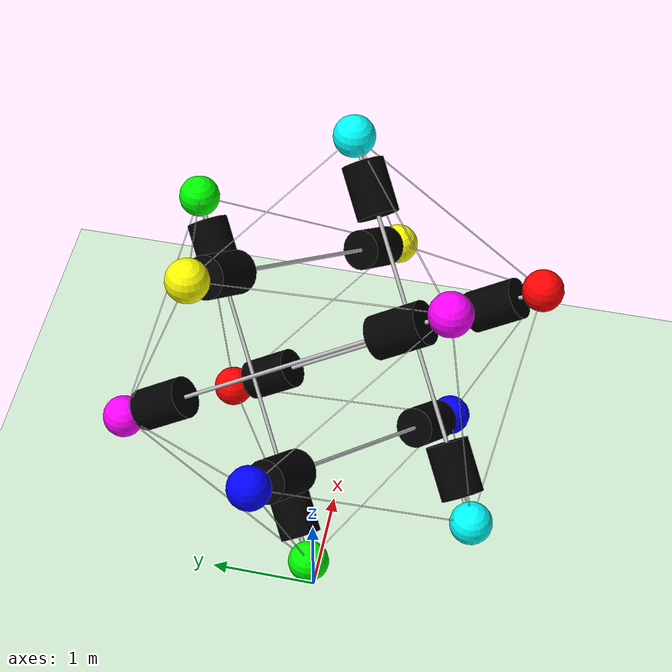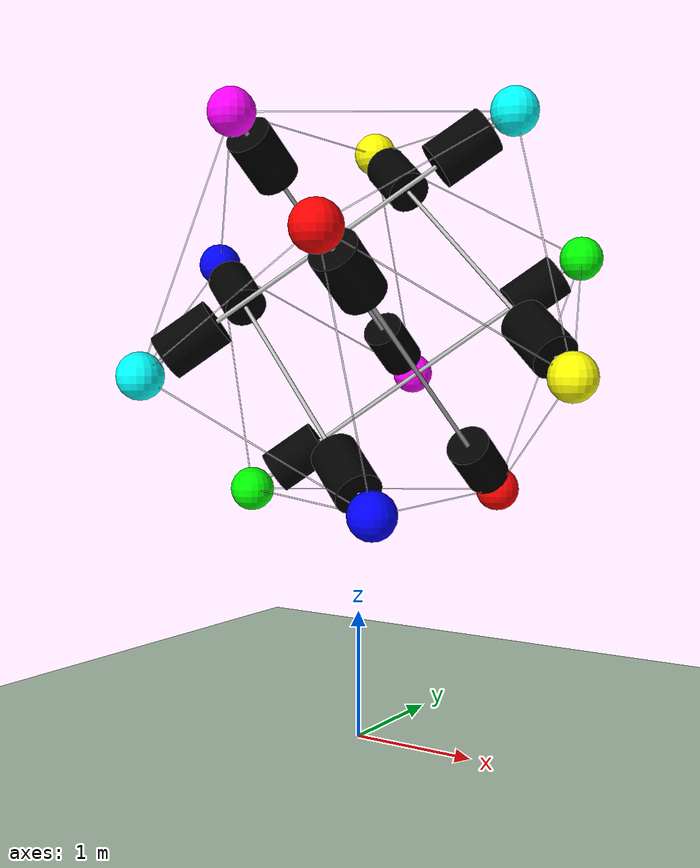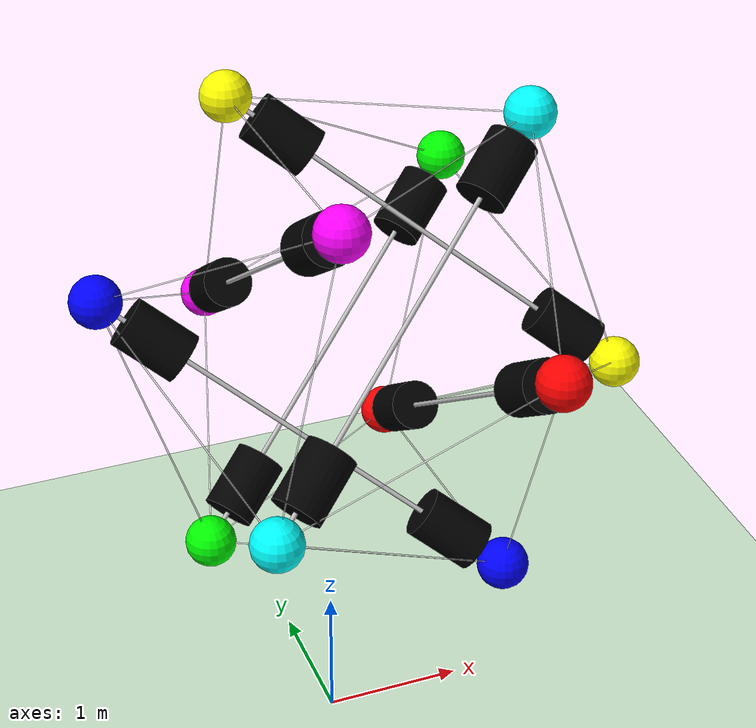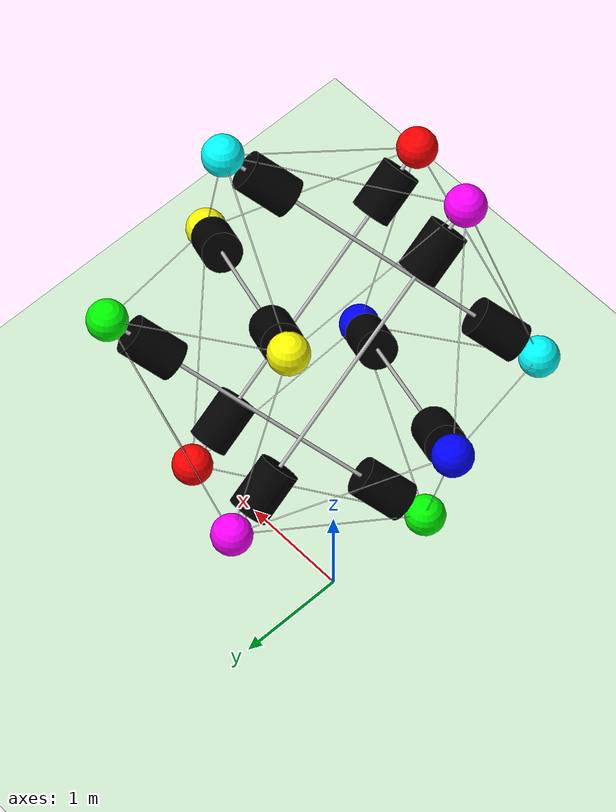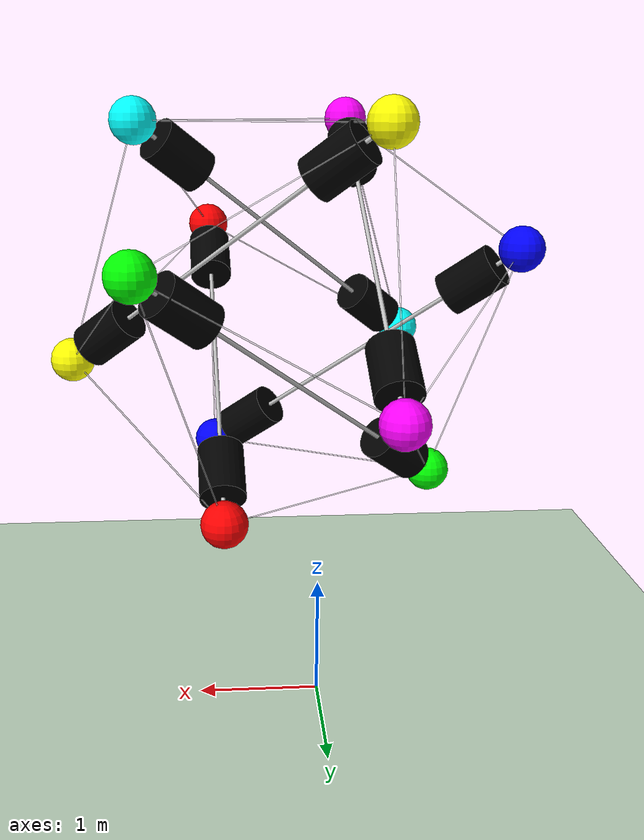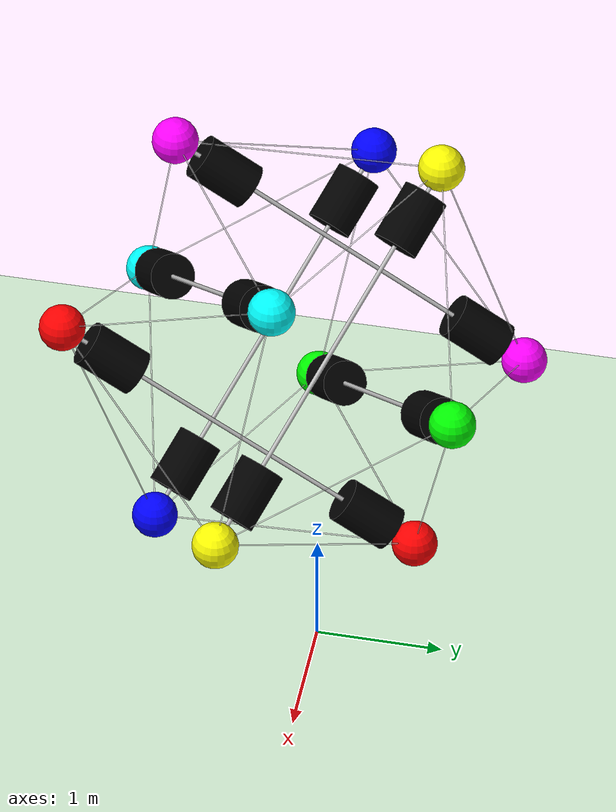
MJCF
<!--
  ~ Copyright (c) 2020.  -  present.  Kun Wang. All Rights Reserved.
  -->

<mujoco model="TT (v1.31)">
    <compiler angle="degree"  inertiafromgeom="true" autolimits="true">
        <lengthrange timestep="0.01"/>
    </compiler>

    <option timestep="0.01"
            gravity="-5 0 -9.81"
            cone="elliptic"
            solver="Newton"
            integrator="Euler">
    </option>

    <visual>
        <global offwidth="1024" offheight="768"/>
    </visual>

    <default>
        <geom conaffinity="1" condim="6" contype="1" rgba="0.75 0.75 0.75 1" size="0.014" solref="-5000 -50"
              density="1000" friction="0.5 0.005 0.9"/>
        <site type="sphere" size="0.02"/>
        <tendon width="0.005" rgba="1 1 1 0.5" damping="1000" stiffness="10000" springlength="1.5"/>
        <general ctrlrange="-100 0" dyntype="filter" gainprm="15000 0 0" biastype="none" dynprm="1 0 0" biasprm="0 0 0"/>
    </default>

    <asset>
        <texture builtin="gradient" height="100" rgb1="1 1 1" rgb2="0 0 0" type="skybox"
                 width="100"/>
        <texture builtin="flat" height="1278" mark="cross" markrgb="1 1 1" name="texgeom"
                 random="0.01" rgb1="0.8 0.6 0.4" rgb2="0.8 0.6 0.4" type="cube" width="127"/>
        <texture builtin="checker" height="100" name="texplane" rgb1="0 0 0" rgb2="0.8 0.8 0.8"
                 type="2d" width="100"/>
        <material name="MatPlane" reflectance="0." shininess="0.5" specular="0.5" texrepeat="30 30"
                  texture="texplane"/>
        <material name="geom" texture="texgeom" texuniform="true"/>
    </asset>

    <worldbody>

        <light name='mylight' pos="0 0 6"/>
        <geom conaffinity="1"  name="floor" pos="0 0 0"
              rgba="0.8 0.9 0.8 1" size="40 40 1" type="plane"/>
        <!-- top 90 camera-->
<!--         top camera-->
        <!--         side camera-->
        <camera name="camera" pos="4.386 -26.633 14.007" xyaxes="0.988 0.152 0.000 -0.063 0.408 0.911"/>
        <camera name="front_far" pos="-7.221 -32.763 14.604" xyaxes="1.000 0.015 -0.000 -0.004 0.253 0.968"/>

        <!-- ======= RODS ======= -->

        <body name="r01">
            <geom name="r01"
                  fromto="0.8698409909441805  -1.7644778009204278   3.8002428692102135 0.7638754318586699   0.8973218059679334   1.938497945071259"
                  size="0.016"
                  type="cylinder"
                  mass="41.8"/>
            <freejoint name="move01"/>
            <geom name="s0"
                  pos="0.8698409909441805  -1.7644778009204278   3.8002428692102135"
                  size="0.175"
                  type="sphere"
                  rgba="1 0 0 1"
                  mass="10.5"/>
            <geom name="s1"
                  pos="0.7638754318586699   0.8973218059679334   1.938497945071259"
                  size="0.175"
                  type="sphere"
                  rgba="1 0 0 1"
                  mass="10.5"/>
            <geom name="b0"
                  fromto="0.8625049137767221  -1.5801993665973875   3.671352836000594 0.8478327594418053  -1.2116424979513067   3.4135727695813536"
                  size="0.175"
                  type="cylinder"
                  rgba="0 0 0 1"
                  mass="35.3"/>
            <geom name="b1"
                  fromto="0.7858836633610452   0.3444865029988123   2.325168044700119 0.7712115090261283   0.713043371644893    2.0673879782808786"
                  size="0.175"
                  type="cylinder"
                  rgba="0 0 0 1"
                  mass="35.3"/>
            <site name="s0"  pos="0.8698409909441805  -1.7644778009204278   3.8002428692102135" rgba="0 0 1 1" size=".001"/>
            <site name="s1"  pos="0.7638754318586699   0.8973218059679334   1.938497945071259" rgba="0 0 1 1" size=".001"/>
        </body>

        <body name="r23">
            <geom name="r23"
                  fromto="-0.9247896016923991  -0.1697572307007126   1.9384978813836105 1.3274131054038005   1.2529123788598575   3.8002428035926363"
                  size="0.016"
                  type="cylinder"
                  mass="41.8"/>
            <freejoint name="move23"/>
            <geom name="s2"
                  pos="-0.9247896016923991  -0.1697572307007126   1.9384978813836105"
                  size="0.175"
                  type="sphere"
                  mass="10.5"
                  rgba="0 1 0 1"
            />
            <geom name="s3"
                  pos="1.3274131054038005   1.2529123788598575   3.8002428035926363"
                  size="0.175"
                  type="sphere"
                  rgba="0 1 0 1"
                  mass="10.5"/>
            <geom name="b2"
                  fromto="-0.7688678758165085  -0.07126471926959632  2.0673879144596197 -0.457024424064727    0.12572030359263647  2.3251679806116385"
                  size="0.175"
                  type="cylinder"
                  rgba="0 0 0 1"
                  mass="35.3"/>
            <geom name="b3"
                  fromto="0.8596479277761284   0.9574348445665084   3.413572704364608 1.17149137952791     1.1544198674287411   3.6713527705166267"
                  size="0.175"
                  type="cylinder"
                  rgba="0 0 0 1"
                  mass="35.3"/>

            <site name="s2" pos="-0.9247896016923991  -0.1697572307007126   1.9384978813836105" rgba="0 1 0 1" size=".001"/>
            <site name="s3" pos="1.3274131054038005   1.2529123788598575   3.8002428035926363" rgba="0 1 0 1" size=".001"/>
        </body>

        <body name="r45">
            <geom name="r45"
                  fromto="0.8436601218824228  -1.0986446307897861   1.938498012618765 -1.514509057155582    0.14048607675178149  3.800242683937055"
                  size="0.016"
                  type="cylinder"
                  mass="41.8"/>
            <freejoint name="move45"/>
            <geom name="s4"
                  pos="0.8436601218824228  -1.0986446307897861   1.938498012618765"
                  size="0.175"
                  type="sphere"
                  rgba="0 0 1 1"
                  mass="10.5"/>
            <geom name="s5"
                  pos="-1.514509057155582    0.14048607675178149  3.800242683937055"
                  size="0.175"
                  type="sphere"
                  rgba="0 0 1 1"
                  mass="10.5"/>
            <geom name="b4"
                  fromto="0.6804022556413301  -1.012858658729216    2.067388028325416 0.3538865231591449  -0.841286714608076    2.3251680597387177"
                  size="0.175"
                  type="cylinder"
                  rgba="0 0 0 1"
                  mass="35.3"/>
            <geom name="b5"
                  fromto="-1.024735458432304   -0.11687183942992868  3.4135726368171024 -1.3512511909144893   0.05470010469121145  3.671352668230404"
                  size="0.175"
                  type="cylinder"
                  rgba="0 0 0 1"
                  mass="35.3"/>
            <site name="s4" pos="0.8436601218824228  -1.0986446307897861   1.938498012618765" rgba="1 0 0 1" size=".001"/>
            <site name="s5" pos="-1.514509057155582    0.14048607675178149  3.800242683937055" rgba="1 0 0 1" size=".001"/>
        </body>

        <body name="r67">
            <geom name="r67"
                  fromto="-0.41454376068883614  1.5163645273159145   2.868394369804038 -0.3088654830760095  -1.1439930792755344   4.732215582690024"
                  size="0.016"
                  type="cylinder"
                  mass="41.8"/>
            <freejoint name="move67"/>
            <geom name="s6"
                  pos="-0.41454376068883614  1.5163645273159145   2.868394369804038"
                  size="0.175"
                  type="sphere"
                  rgba="1 0 1 1"
                  mass="10.5"/>
            <geom name="s7"
                  pos="-0.3088654830760095  -1.1439930792755344   4.732215582690024"
                  size="0.175"
                  type="sphere"
                  rgba="1 0 1 1"
                  mass="10.5"/>
            <geom name="b6"
                  fromto="-0.40722757223871736  1.3321859237826605   2.99742814608076 -0.3925951953384798   0.9638287167161521   3.2554956986342045"
                  size="0.175"
                  type="cylinder"
                  rgba="0 0 0 1"
                  mass="35.3"/>
            <geom name="b7"
                  fromto="-0.3308140484263658  -0.591457268675772    4.345114253859858 -0.31618167152612825 -0.9598144757422804   4.6031818064133025"
                  size="0.175"
                  type="cylinder"
                  rgba="0 0 0 1"
                  mass="35.3"/>
            <site name="s6" pos="-0.41454376068883614  1.5163645273159145   2.868394369804038" rgba="1 0 0 1" size=".001"/>
            <site name="s7" pos="-0.3088654830760095  -1.1439930792755344   4.732215582690024" rgba="1 0 0 1" size=".001"/>
        </body>

        <body name="r89">
            <geom name="r89"
                  fromto="-0.8716869253266033  -1.499819460510689    2.8683944450712593 1.3794106370249406  -0.07811965558194774  4.732215636728029"
                  size="0.016"
                  type="cylinder"
                  mass="41.8"/>
            <freejoint name="move89"/>
            <geom name="s8"
                  pos="-0.8716869253266033  -1.499819460510689    2.8683944450712593"
                  size="0.175"
                  type="sphere"
                  rgba="0 1 1 1"
                  mass="10.5"/>
            <geom name="s9"
                  pos="1.3794106370249406  -0.07811965558194774  4.732215636728029"
                  size="0.175"
                  type="sphere"
                  rgba="0 1 1 1"
                  mass="10.5"/>
            <geom name="b8"
                  fromto="-0.7158417094714965  -1.4013940894002377   2.9974282198782665 -0.4041512777612827  -1.204543347179335    3.2554957694922804"
                  size="0.175"
                  type="cylinder"
                  rgba="0 0 0 1"
                  mass="35.3"/>
            <geom name="b9"
                  fromto="0.91187498945962    -0.3733957689133016   4.3451143123070075 1.223565421169834   -0.1765450266923989   4.603181861921022"
                  size="0.175"
                  type="cylinder"
                  rgba="0 0 0 1"
                  mass="35.3"/>
            <site name="s8" pos="-0.8716869253266033  -1.499819460510689    2.8683944450712593" rgba="1 0 0 1" size=".001"/>
            <site name="s9" pos="1.3794106370249406  -0.07811965558194774  4.732215636728029" rgba="1 0 0 1" size=".001"/>
        </body>

        <body name="r1011">
            <geom name="r1011"
                  fromto="1.9689761806710213  -0.3876247672209026   2.8683945608669834 -0.3878005586401425   0.8510337311460808   4.732215513212589"
                  size="0.016"
                  type="cylinder"
                  mass="41.8"/>
            <freejoint name="move1011"/>
            <geom name="s10"
                  pos="1.9689761806710213  -0.3876247672209026   2.8683945608669834"
                  size="0.175"
                  type="sphere"
                  rgba="1 1 0 1"
                  mass="10.5"/>
            <geom name="s11"
                  pos="-0.3878005586401425   0.8510337311460808   4.732215513212589"
                  size="0.175"
                  type="sphere"
                  rgba="1 1 0 1"
                  mass="10.5"/>
            <geom name="b10"
                  fromto="1.8058147141033254  -0.30187148656472695  2.9974283191062945 1.4794917809679335  -0.13036492525237534  3.2554958355849166"
                  size="0.175"
                  type="cylinder"
                  rgba="0 0 0 1"
                  mass="35.3"/>
            <geom name="b11"
                  fromto="0.10168384106294526  0.5937738891775536   4.345114238494656 -0.2246390920724466   0.7652804504899051   4.603181754973278"
                  size="0.175"
                  type="cylinder"
                  rgba="0 0 0 1"
                  mass="35.3"/>
            <site name="s10" pos="1.9689761806710213  -0.3876247672209026   2.8683945608669834" rgba="1 0 0 1" size=".001"/>
            <site name="s11" pos="-0.3878005586401425   0.8510337311460808   4.732215513212589" rgba="1 0 0 1" size=".001"/>
        </body>

    </worldbody>

    <tendon>
        <spatial name="td_0">
            <site site="s0"/>
            <site site="s10"/>
        </spatial>
        <spatial name="td_1">
            <site site="s1"/>
            <site site="s4"/>
        </spatial>
        <spatial name="td_2">
            <site site="s2"/>
            <site site="s6"/>
        </spatial>
        <spatial name="td_3">
            <site site="s3"/>
            <site site="s1"/>
        </spatial>
        <spatial name="td_4">
            <site site="s4"/>
            <site site="s8"/>
        </spatial>
        <spatial name="td_5">
            <site site="s5"/>
            <site site="s2"/>
        </spatial>
        <spatial name="td_6">
            <site site="s6"/>
            <site site="s5"/>
        </spatial>
        <spatial name="td_7">
            <site site="s7"/>
            <site site="s11"/>
        </spatial>
        <spatial name="td_8">
            <site site="s8"/>
            <site site="s7"/>
        </spatial>
        <spatial name="td_9">
            <site site="s9"/>
            <site site="s0"/>
        </spatial>
        <spatial name="td_10">
            <site site="s10"/>
            <site site="s9"/>
        </spatial>
        <spatial name="td_11">
            <site site="s11"/>
            <site site="s3"/>
        </spatial>
        <spatial name="td_12">
            <site site="s0"/>
            <site site="s8"/>
        </spatial>
        <spatial name="td_13">
            <site site="s0"/>
            <site site="s4"/>
        </spatial>
        <spatial name="td_14">
            <site site="s10"/>
            <site site="s1"/>
        </spatial>
        <spatial name="td_15">
            <site site="s10"/>
            <site site="s3"/>
        </spatial>
        <spatial name="td_16">
            <site site="s9"/>
            <site site="s11"/>
        </spatial>
        <spatial name="td_17">
            <site site="s9"/>
            <site site="s7"/>
        </spatial>
        <spatial name="td_18">
            <site site="s2"/>
            <site site="s4"/>
        </spatial>
        <spatial name="td_19">
            <site site="s2"/>
            <site site="s1"/>
        </spatial>
        <spatial name="td_20">
            <site site="s6"/>
            <site site="s3"/>
        </spatial>
        <spatial name="td_21">
            <site site="s6"/>
            <site site="s11"/>
        </spatial>
        <spatial name="td_22">
            <site site="s5"/>
            <site site="s7"/>
        </spatial>
        <spatial name="td_23">
            <site site="s5"/>
            <site site="s8"/>
        </spatial>
    </tendon>

    <sensor>
        <framepos name="pos_s0" objname="s0" objtype="site"/>
        <framepos name="pos_s1" objname="s1" objtype="site"/>
        <framepos name="pos_s2" objname="s2" objtype="site"/>
        <framepos name="pos_s3" objname="s3" objtype="site"/>
        <framepos name="pos_s4" objname="s4" objtype="site"/>
        <framepos name="pos_s5" objname="s5" objtype="site"/>
        <framepos name="pos_s6" objname="s6" objtype="site"/>
        <framepos name="pos_s7" objname="s7" objtype="site"/>
        <framepos name="pos_s8" objname="s8" objtype="site"/>
        <framepos name="pos_s9" objname="s9" objtype="site"/>
        <framepos name="pos_s10" objname="s10" objtype="site"/>
        <framepos name="pos_s11" objname="s11" objtype="site"/>

        <framelinvel name="linvel_s0" objname="s0" objtype="site"/>
        <framelinvel name="linvel_s1" objname="s1" objtype="site"/>
        <framelinvel name="linvel_s2" objname="s2" objtype="site"/>
        <framelinvel name="linvel_s3" objname="s3" objtype="site"/>
        <framelinvel name="linvel_s4" objname="s4" objtype="site"/>
        <framelinvel name="linvel_s5" objname="s5" objtype="site"/>
        <framelinvel name="linvel_s6" objname="s6" objtype="site"/>
        <framelinvel name="linvel_s7" objname="s7" objtype="site"/>
        <framelinvel name="linvel_s8" objname="s8" objtype="site"/>
        <framelinvel name="linvel_s9" objname="s9" objtype="site"/>
        <framelinvel name="linvel_s10" objname="s10" objtype="site"/>
        <framelinvel name="linvel_s11" objname="s11" objtype="site"/>

        <framelinacc name="linacc_s0" objname="s0" objtype="site"/>
        <framelinacc name="linacc_s1" objname="s1" objtype="site"/>
        <framelinacc name="linacc_s2" objname="s2" objtype="site"/>
        <framelinacc name="linacc_s3" objname="s3" objtype="site"/>
        <framelinacc name="linacc_s4" objname="s4" objtype="site"/>
        <framelinacc name="linacc_s5" objname="s5" objtype="site"/>
        <framelinacc name="linacc_s6" objname="s6" objtype="site"/>
        <framelinacc name="linacc_s7" objname="s7" objtype="site"/>
        <framelinacc name="linacc_s8" objname="s8" objtype="site"/>
        <framelinacc name="linacc_s9" objname="s9" objtype="site"/>
        <framelinacc name="linacc_s10" objname="s10" objtype="site"/>
        <framelinacc name="linacc_s11" objname="s11" objtype="site"/>

        <framelinacc name="linacc_r01" objname="r01" objtype="geom"/>
        <frameangacc name="angacc_r01" objname="r01" objtype="geom"/>
        <framepos name="pos_r01" objname="r01" objtype="geom"/>
        <framelinvel name="linvel_r01" objname="r01" objtype="geom"/>
        <frameangvel name="angvel_r01" objname="r01" objtype="geom"/>
        <framequat name="quat_r01" objname="r01" objtype="geom"/>

        <framelinacc name="linacc_r23" objname="r23" objtype="geom"/>
        <frameangacc name="angacc_r23" objname="r23" objtype="geom"/>
        <framepos name="pos_r23" objname="r23" objtype="geom"/>
        <framelinvel name="linvel_r23" objname="r23" objtype="geom"/>
        <frameangvel name="angvel_r23" objname="r23" objtype="geom"/>
        <framequat name="quat_r23" objname="r23" objtype="geom"/>

        <framelinacc name="linacc_r45" objname="r45" objtype="geom"/>
        <frameangacc name="angacc_r45" objname="r45" objtype="geom"/>
        <framepos name="pos_r45" objname="r45" objtype="geom"/>
        <framelinvel name="linvel_r45" objname="r45" objtype="geom"/>
        <frameangvel name="angvel_r45" objname="r45" objtype="geom"/>
        <framequat name="quat_r45" objname="r45" objtype="geom"/>

        <framelinacc name="linacc_r67" objname="r67" objtype="geom"/>
        <frameangacc name="angacc_r67" objname="r67" objtype="geom"/>
        <framepos name="pos_r67" objname="r67" objtype="geom"/>
        <framelinvel name="linvel_r67" objname="r67" objtype="geom"/>
        <frameangvel name="angvel_r67" objname="r67" objtype="geom"/>
        <framequat name="quat_r67" objname="r67" objtype="geom"/>

        <framelinacc name="linacc_r89" objname="r89" objtype="geom"/>
        <frameangacc name="angacc_r89" objname="r89" objtype="geom"/>
        <framepos name="pos_r89" objname="r89" objtype="geom"/>
        <framelinvel name="linvel_r89" objname="r89" objtype="geom"/>
        <frameangvel name="angvel_r89" objname="r89" objtype="geom"/>
        <framequat name="quat_r89" objname="r89" objtype="geom"/>

        <framelinacc name="linacc_r1011" objname="r1011" objtype="geom"/>
        <frameangacc name="angacc_r1011" objname="r1011" objtype="geom"/>
        <framepos name="pos_r1011" objname="r1011" objtype="geom"/>
        <framelinvel name="linvel_r1011" objname="r1011" objtype="geom"/>
        <frameangvel name="angvel_r1011" objname="r1011" objtype="geom"/>
        <framequat name="quat_r1011" objname="r1011" objtype="geom"/>
    </sensor>

    <actuator>
        <general name='t0' tendon="td_0"/>
        <general name='t1' tendon="td_1"/>
        <general name='t2' tendon="td_2"/>
        <general name='t3' tendon="td_3"/>
        <general name='t4' tendon="td_4"/>
        <general name='t5' tendon="td_5"/>
        <general name='t6' tendon="td_6"/>
        <general name='t7' tendon="td_7"/>
        <general name='t8' tendon="td_8"/>
        <general name='t9' tendon="td_9"/>
        <general name='t10' tendon="td_10"/>
        <general name='t11' tendon="td_11"/>
        <general name='t12' tendon="td_12"/>
        <general name='t13' tendon="td_13"/>
        <general name='t14' tendon="td_14"/>
        <general name='t15' tendon="td_15"/>
        <general name='t16' tendon="td_16"/>
        <general name='t17' tendon="td_17"/>
        <general name='t18' tendon="td_18"/>
        <general name='t19' tendon="td_19"/>
        <general name='t20' tendon="td_20"/>
        <general name='t21' tendon="td_21"/>
        <general name='t22' tendon="td_22"/>
        <general name='t23' tendon="td_23"/>
    </actuator>
</mujoco>
